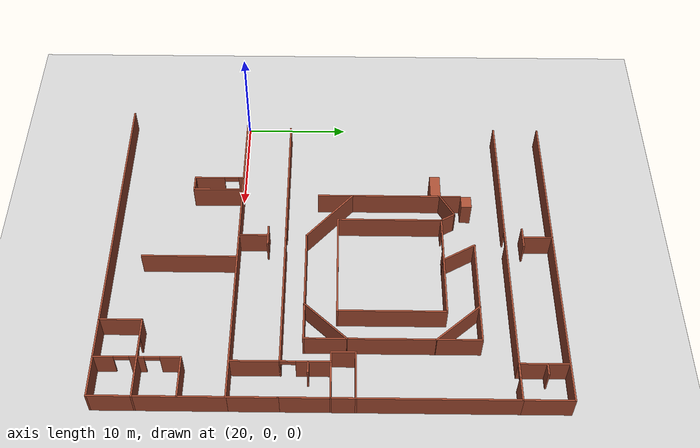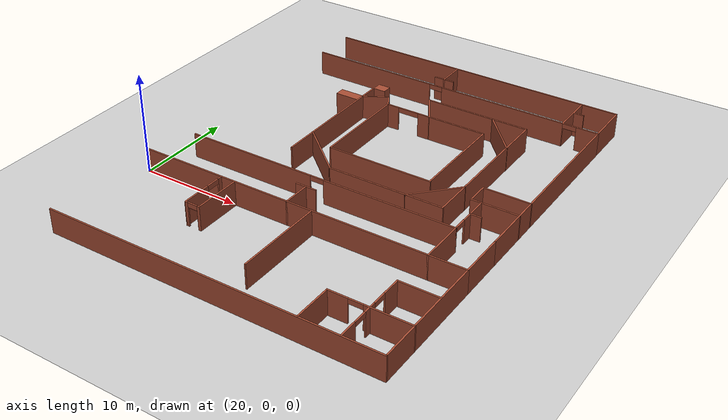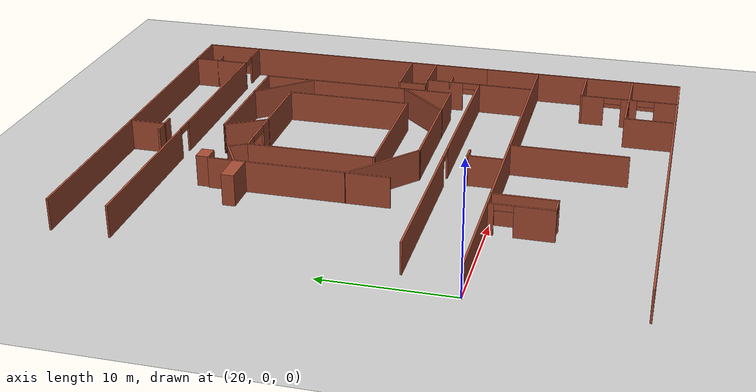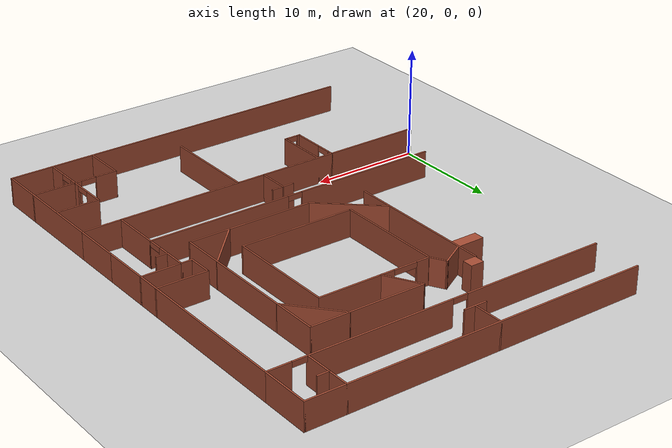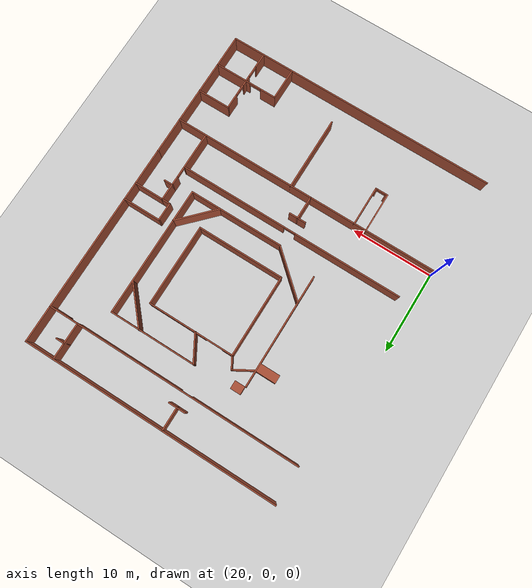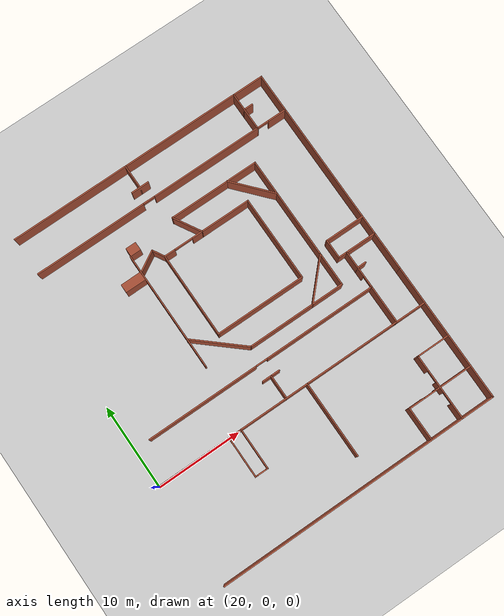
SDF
<sdf version="1.7">
 <world name="default">
  <model name="ground_plane">
   <pose>10 0 0 0 -0 0</pose>
   <static>1</static>
   <link name="link">
    <collision name="collision">
     <geometry><plane><normal>0 0 1</normal><size>100 100</size></plane></geometry>
     <surface><friction><ode><mu>100</mu><mu2>50</mu2></ode></friction></surface>
    </collision>
    <visual name="visual">
     <cast_shadows>0</cast_shadows>
     <geometry><plane><normal>0 0 1</normal><size>100 100</size></plane></geometry>
     <material>
      <script><uri>file://media/materials/scripts/gazebo.material</uri><name>Gazebo/Grey</name></script>
     </material>
    </visual>
   </link>
  </model>
  <model name="indoor_total_5">
   <pose>26.8 9 0 0 -0 0</pose>
   <link name="Wall_101">
    <collision name="Wall_101_Collision">
     <geometry><box><size>2.95 0.15 2.5</size></box></geometry>
     <pose>0 0 1.25 0 -0 0</pose>
    </collision>
    <visual name="Wall_101_Visual">
     <pose>0 0 1.25 0 -0 0</pose>
     <geometry><box><size>2.95 0.15 2.5</size></box></geometry>
     <material>
      <script><uri>file://media/materials/scripts/gazebo.material</uri><name>Gazebo/Bricks</name></script>
      <ambient>1 1 1 1</ambient>
     </material>
     <meta><layer>0</layer></meta>
    </visual>
    <pose>9.2 -7.6 0 0 -0 1.5708</pose>
   </link>
   <link name="Wall_103">
    <collision name="Wall_103_Collision">
     <geometry><box><size>4.65 0.15 2.5</size></box></geometry>
     <pose>0 0 1.25 0 -0 0</pose>
    </collision>
    <visual name="Wall_103_Visual">
     <pose>0 0 1.25 0 -0 0</pose>
     <geometry><box><size>4.65 0.15 2.5</size></box></geometry>
     <material>
      <script><uri>file://media/materials/scripts/gazebo.material</uri><name>Gazebo/Bricks</name></script>
      <ambient>1 1 1 1</ambient>
     </material>
     <meta><layer>0</layer></meta>
    </visual>
    <pose>23.2 -6.75 0 0 -0 -1.5708</pose>
   </link>
   <link name="Wall_107">
    <collision name="Wall_107_Collision">
     <geometry><box><size>16.15 0.15 2.5</size></box></geometry>
     <pose>0 0 1.25 0 -0 0</pose>
    </collision>
    <visual name="Wall_107_Visual">
     <pose>0 0 1.25 0 -0 0</pose>
     <geometry><box><size>16.15 0.15 2.5</size></box></geometry>
     <material>
      <script><uri>file://media/materials/scripts/gazebo.material</uri><name>Gazebo/Bricks</name></script>
      <ambient>1 1 1 1</ambient>
     </material>
     <meta><layer>0</layer></meta>
    </visual>
    <pose>20.8 5.5 0 0 -0 -1.5708</pose>
   </link>
   <link name="Wall_108">
    <collision name="Wall_108_Collision">
     <geometry><box><size>11.75 0.15 2.5</size></box></geometry>
     <pose>0 0 1.25 0 -0 0</pose>
    </collision>
    <visual name="Wall_108_Visual">
     <pose>0 0 1.25 0 -0 0</pose>
     <geometry><box><size>11.75 0.15 2.5</size></box></geometry>
     <material>
      <script><uri>file://media/materials/scripts/gazebo.material</uri><name>Gazebo/Bricks</name></script>
      <ambient>1 1 1 1</ambient>
     </material>
     <meta><layer>0</layer></meta>
    </visual>
    <pose>15 -2.5 0 0 -0 3.14159</pose>
   </link>
   <link name="Wall_110">
    <collision name="Wall_110_Collision">
     <geometry><box><size>6.81033 0.15 2.5</size></box></geometry>
     <pose>0 0 1.25 0 -0 0</pose>
    </collision>
    <visual name="Wall_110_Visual">
     <pose>0 0 1.25 0 -0 0</pose>
     <geometry><box><size>6.81033 0.15 2.5</size></box></geometry>
     <material>
      <script><uri>file://media/materials/scripts/gazebo.material</uri><name>Gazebo/Bricks</name></script>
      <ambient>1 1 1 1</ambient>
     </material>
     <meta><layer>0</layer></meta>
    </visual>
    <pose>6.7 -0.3 0 0 -0 -0.721655</pose>
   </link>
   <link name="Wall_112">
    <collision name="Wall_112_Collision">
     <geometry><box><size>2.42454 1 2.5</size></box></geometry>
     <pose>0 0 1.25 0 -0 0</pose>
    </collision>
    <visual name="Wall_112_Visual">
     <pose>0 0 1.25 0 -0 0</pose>
     <geometry><box><size>2.42454 1 2.5</size></box></geometry>
     <material>
      <script><uri>file://media/materials/scripts/gazebo.material</uri><name>Gazebo/Bricks</name></script>
      <ambient>1 1 1 1</ambient>
     </material>
     <meta><layer>0</layer></meta>
    </visual>
    <pose>2.9125 10.087 0 0 -0 0</pose>
   </link>
   <link name="Wall_120">
    <collision name="Wall_120_Collision">
     <geometry><box><size>2.74856 0.15 2.5</size></box></geometry>
     <pose>0 0 1.25 0 -0 0</pose>
    </collision>
    <visual name="Wall_120_Visual">
     <pose>0 0 1.25 0 -0 0</pose>
     <geometry><box><size>2.74856 0.15 2.5</size></box></geometry>
     <material>
      <script><uri>file://media/materials/scripts/gazebo.material</uri><name>Gazebo/Bricks</name></script>
      <ambient>1 1 1 1</ambient>
     </material>
     <meta><layer>0</layer></meta>
    </visual>
    <pose>5.325 11.15 0 0 -0 0.523919</pose>
   </link>
   <link name="Wall_121">
    <collision name="Wall_121_Collision">
     <geometry><box><size>1.65083 0.15 2.5</size></box></geometry>
     <pose>0 0 1.25 0 -0 0</pose>
    </collision>
    <visual name="Wall_121_Visual">
     <pose>0 0 1.25 0 -0 0</pose>
     <geometry><box><size>1.65083 0.15 2.5</size></box></geometry>
     <material>
      <script><uri>file://media/materials/scripts/gazebo.material</uri><name>Gazebo/Bricks</name></script>
      <ambient>1 1 1 1</ambient>
     </material>
     <meta><layer>0</layer></meta>
    </visual>
    <pose>6.825 11.15 0 0 -0 -1.04752</pose>
   </link>
   <link name="Wall_128">
    <collision name="Wall_128_Collision">
     <geometry><box><size>3.61308 0.15 2.5</size></box></geometry>
     <pose>0 0 1.25 0 -0 0</pose>
    </collision>
    <visual name="Wall_128_Visual">
     <pose>0 0 1.25 0 -0 0</pose>
     <geometry><box><size>3.61308 0.15 2.5</size></box></geometry>
     <material>
      <script><uri>file://media/materials/scripts/gazebo.material</uri><name>Gazebo/Bricks</name></script>
      <ambient>1 1 1 1</ambient>
     </material>
     <meta><layer>0</layer></meta>
    </visual>
    <pose>11.065 12 0 0 -0 -1.04771</pose>
   </link>
   <link name="Wall_130">
    <collision name="Wall_130_Collision">
     <geometry><box><size>5.53693 0.15 2.5</size></box></geometry>
     <pose>0 0 1.25 0 -0 0</pose>
    </collision>
    <visual name="Wall_130_Visual">
     <pose>0 0 1.25 0 -0 0</pose>
     <geometry><box><size>5.53693 0.15 2.5</size></box></geometry>
     <material>
      <script><uri>file://media/materials/scripts/gazebo.material</uri><name>Gazebo/Bricks</name></script>
      <ambient>1 1 1 1</ambient>
     </material>
     <meta><layer>0</layer></meta>
    </visual>
    <pose>18.9425 -0.5495 0 0 -0 0.809816</pose>
   </link>
   <link name="Wall_132">
    <collision name="Wall_132_Collision">
     <geometry><box><size>5.58972 0.15 2.5</size></box></geometry>
     <pose>0 0 1.25 0 -0 0</pose>
    </collision>
    <visual name="Wall_132_Visual">
     <pose>0 0 1.25 0 -0 0</pose>
     <geometry><box><size>5.58972 0.15 2.5</size></box></geometry>
     <material>
      <script><uri>file://media/materials/scripts/gazebo.material</uri><name>Gazebo/Bricks</name></script>
      <ambient>1 1 1 1</ambient>
     </material>
     <meta><layer>0</layer></meta>
    </visual>
    <pose>19.0085 11.4535 0 0 -0 -0.851742</pose>
   </link>
   <link name="Wall_142">
    <pose>12.5 10.5 0 0 -0 0</pose>
    <visual name="Wall_142_Visual_0">
     <pose>-4.705 0 1.25 0 -0 0</pose>
     <geometry><box><size>1.34 0.15 2.5</size></box></geometry>
     <material>
      <script><uri>file://media/materials/scripts/gazebo.material</uri><name>Gazebo/Bricks</name></script>
      <ambient>1 1 1 1</ambient>
     </material>
     <meta><layer>0</layer></meta>
    </visual>
    <collision name="Wall_142_Collision_0">
     <geometry><box><size>1.34 0.15 2.5</size></box></geometry>
     <pose>-4.705 0 1.25 0 -0 0</pose>
    </collision>
    <visual name="Wall_142_Visual_1">
     <pose>1.77 0 1.25 0 -0 0</pose>
     <geometry><box><size>7.21 0.15 2.5</size></box></geometry>
     <material>
      <script><uri>file://media/materials/scripts/gazebo.material</uri><name>Gazebo/Bricks</name></script>
      <ambient>1 1 1 1</ambient>
     </material>
     <meta><layer>0</layer></meta>
    </visual>
    <collision name="Wall_142_Collision_1">
     <geometry><box><size>7.21 0.15 2.5</size></box></geometry>
     <pose>1.77 0 1.25 0 -0 0</pose>
    </collision>
    <visual name="Wall_142_Visual_2">
     <pose>-2.935 0 2.25 0 -0 0</pose>
     <geometry><box><size>2.2 0.15 0.5</size></box></geometry>
     <material>
      <script><uri>file://media/materials/scripts/gazebo.material</uri><name>Gazebo/Bricks</name></script>
      <ambient>1 1 1 1</ambient>
     </material>
     <meta><layer>0</layer></meta>
    </visual>
    <collision name="Wall_142_Collision_2">
     <geometry><box><size>2.2 0.15 0.5</size></box></geometry>
     <pose>-2.935 0 2.25 0 -0 0</pose>
    </collision>
   </link>
   <link name="Wall_143">
    <collision name="Wall_143_Collision">
     <geometry><box><size>10.15 0.15 2.5</size></box></geometry>
     <pose>0 0 1.25 0 -0 0</pose>
    </collision>
    <visual name="Wall_143_Visual">
     <pose>0 0 1.25 0 -0 0</pose>
     <geometry><box><size>10.15 0.15 2.5</size></box></geometry>
     <material>
      <script><uri>file://media/materials/scripts/gazebo.material</uri><name>Gazebo/Bricks</name></script>
      <ambient>1 1 1 1</ambient>
     </material>
     <meta><layer>0</layer></meta>
    </visual>
    <pose>17.8 5.5 0 0 -0 -1.5708</pose>
   </link>
   <link name="Wall_144">
    <collision name="Wall_144_Collision">
     <geometry><box><size>10.75 0.15 2.5</size></box></geometry>
     <pose>0 0 1.25 0 -0 0</pose>
    </collision>
    <visual name="Wall_144_Visual">
     <pose>0 0 1.25 0 -0 0</pose>
     <geometry><box><size>10.75 0.15 2.5</size></box></geometry>
     <material>
      <script><uri>file://media/materials/scripts/gazebo.material</uri><name>Gazebo/Bricks</name></script>
      <ambient>1 1 1 1</ambient>
     </material>
     <meta><layer>0</layer></meta>
    </visual>
    <pose>12.5 0.5 0 0 -0 3.14159</pose>
   </link>
   <link name="Wall_145">
    <collision name="Wall_145_Collision">
     <geometry><box><size>10.15 0.15 2.5</size></box></geometry>
     <pose>0 0 1.25 0 -0 0</pose>
    </collision>
    <visual name="Wall_145_Visual">
     <pose>0 0 1.25 0 -0 0</pose>
     <geometry><box><size>10.15 0.15 2.5</size></box></geometry>
     <material>
      <script><uri>file://media/materials/scripts/gazebo.material</uri><name>Gazebo/Bricks</name></script>
      <ambient>1 1 1 1</ambient>
     </material>
     <meta><layer>0</layer></meta>
    </visual>
    <pose>7.2 5.5 0 0 -0 1.5708</pose>
   </link>
   <link name="Wall_147">
    <collision name="Wall_147_Collision">
     <geometry><box><size>2.15 0.15 2.5</size></box></geometry>
     <pose>0 0 1.25 0 -0 0</pose>
    </collision>
    <visual name="Wall_147_Visual">
     <pose>0 0 1.25 0 -0 0</pose>
     <geometry><box><size>2.15 0.15 2.5</size></box></geometry>
     <material>
      <script><uri>file://media/materials/scripts/gazebo.material</uri><name>Gazebo/Bricks</name></script>
      <ambient>1 1 1 1</ambient>
     </material>
     <meta><layer>0</layer></meta>
    </visual>
    <pose>9.2 18.2 0 0 -0 0</pose>
   </link>
   <link name="Wall_149">
    <collision name="Wall_149_Collision">
     <geometry><box><size>1.15 0.15 2.5</size></box></geometry>
     <pose>0 0 1.25 0 -0 0</pose>
    </collision>
    <visual name="Wall_149_Visual">
     <pose>0 0 1.25 0 -0 0</pose>
     <geometry><box><size>1.15 0.15 2.5</size></box></geometry>
     <material>
      <script><uri>file://media/materials/scripts/gazebo.material</uri><name>Gazebo/Bricks</name></script>
      <ambient>1 1 1 1</ambient>
     </material>
     <meta><layer>0</layer></meta>
    </visual>
    <pose>23.7 19 0 0 -0 0</pose>
   </link>
   <link name="Wall_151">
    <collision name="Wall_151_Collision">
     <geometry><box><size>1.15 0.15 2.5</size></box></geometry>
     <pose>0 0 1.25 0 -0 0</pose>
    </collision>
    <visual name="Wall_151_Visual">
     <pose>0 0 1.25 0 -0 0</pose>
     <geometry><box><size>1.15 0.15 2.5</size></box></geometry>
     <material>
      <script><uri>file://media/materials/scripts/gazebo.material</uri><name>Gazebo/Bricks</name></script>
      <ambient>1 1 1 1</ambient>
     </material>
     <meta><layer>0</layer></meta>
    </visual>
    <pose>23.7 -2 0 0 -0 0</pose>
   </link>
   <link name="Wall_158">
    <pose>2 -11.4 0 0 -0 -1.5708</pose>
    <visual name="Wall_158_Visual_0">
     <pose>-2.19297 0 1.25 0 -0 0</pose>
     <geometry><box><size>0.564066 0.15 2.5</size></box></geometry>
     <material>
      <script><uri>file://media/materials/scripts/gazebo.material</uri><name>Gazebo/Bricks</name></script>
      <ambient>1 1 1 1</ambient>
     </material>
     <meta><layer>0</layer></meta>
    </visual>
    <collision name="Wall_158_Collision_0">
     <geometry><box><size>0.564066 0.15 2.5</size></box></geometry>
     <pose>-2.19297 0 1.25 0 -0 0</pose>
    </collision>
    <visual name="Wall_158_Visual_1">
     <pose>0.982033 0 1.25 0 -0 0</pose>
     <geometry><box><size>2.98593 0.15 2.5</size></box></geometry>
     <material>
      <script><uri>file://media/materials/scripts/gazebo.material</uri><name>Gazebo/Bricks</name></script>
      <ambient>1 1 1 1</ambient>
     </material>
     <meta><layer>0</layer></meta>
    </visual>
    <collision name="Wall_158_Collision_1">
     <geometry><box><size>2.98593 0.15 2.5</size></box></geometry>
     <pose>0.982033 0 1.25 0 -0 0</pose>
    </collision>
    <visual name="Wall_158_Visual_2">
     <pose>-1.21093 0 2.25 0 -0 0</pose>
     <geometry><box><size>1.4 0.15 0.5</size></box></geometry>
     <material>
      <script><uri>file://media/materials/scripts/gazebo.material</uri><name>Gazebo/Bricks</name></script>
      <ambient>1 1 1 1</ambient>
     </material>
     <meta><layer>0</layer></meta>
    </visual>
    <collision name="Wall_158_Collision_2">
     <geometry><box><size>1.4 0.15 0.5</size></box></geometry>
     <pose>-1.21093 0 2.25 0 -0 0</pose>
    </collision>
   </link>
   <link name="Wall_159">
    <pose>2.75 -13.8 0 0 -0 0</pose>
    <visual name="Wall_159_Visual_0">
     <pose>-0.651036 0 1.25 0 -0 0</pose>
     <geometry><box><size>0.347928 0.15 2.5</size></box></geometry>
     <material>
      <script><uri>file://media/materials/scripts/gazebo.material</uri><name>Gazebo/Bricks</name></script>
      <ambient>1 1 1 1</ambient>
     </material>
     <meta><layer>0</layer></meta>
    </visual>
    <collision name="Wall_159_Collision_0">
     <geometry><box><size>0.347928 0.15 2.5</size></box></geometry>
     <pose>-0.651036 0 1.25 0 -0 0</pose>
    </collision>
    <visual name="Wall_159_Visual_1">
     <pose>0.673964 0 1.25 0 -0 0</pose>
     <geometry><box><size>0.302072 0.15 2.5</size></box></geometry>
     <material>
      <script><uri>file://media/materials/scripts/gazebo.material</uri><name>Gazebo/Bricks</name></script>
      <ambient>1 1 1 1</ambient>
     </material>
     <meta><layer>0</layer></meta>
    </visual>
    <collision name="Wall_159_Collision_1">
     <geometry><box><size>0.302072 0.15 2.5</size></box></geometry>
     <pose>0.673964 0 1.25 0 -0 0</pose>
    </collision>
    <visual name="Wall_159_Visual_2">
     <pose>0.022928 0 2.25 0 -0 0</pose>
     <geometry><box><size>1 0.15 0.5</size></box></geometry>
     <material>
      <script><uri>file://media/materials/scripts/gazebo.material</uri><name>Gazebo/Bricks</name></script>
      <ambient>1 1 1 1</ambient>
     </material>
     <meta><layer>0</layer></meta>
    </visual>
    <collision name="Wall_159_Collision_2">
     <geometry><box><size>1 0.15 0.5</size></box></geometry>
     <pose>0.022928 0 2.25 0 -0 0</pose>
    </collision>
   </link>
   <link name="Wall_160">
    <collision name="Wall_160_Collision">
     <geometry><box><size>4.95 0.15 2.5</size></box></geometry>
     <pose>0 0 1.25 0 -0 0</pose>
    </collision>
    <visual name="Wall_160_Visual">
     <pose>0 0 1.25 0 -0 0</pose>
     <geometry><box><size>4.95 0.15 2.5</size></box></geometry>
     <material>
      <script><uri>file://media/materials/scripts/gazebo.material</uri><name>Gazebo/Bricks</name></script>
      <ambient>1 1 1 1</ambient>
     </material>
     <meta><layer>0</layer></meta>
    </visual>
    <pose>3.5 -11.4 0 0 -0 1.5708</pose>
   </link>
   <link name="Wall_162">
    <collision name="Wall_162_Collision">
     <geometry><box><size>4.05 0.15 2.5</size></box></geometry>
     <pose>0 0 1.25 0 -0 0</pose>
    </collision>
    <visual name="Wall_162_Visual">
     <pose>0 0 1.25 0 -0 0</pose>
     <geometry><box><size>4.05 0.15 2.5</size></box></geometry>
     <material>
      <script><uri>file://media/materials/scripts/gazebo.material</uri><name>Gazebo/Bricks</name></script>
      <ambient>1 1 1 1</ambient>
     </material>
     <meta><layer>0</layer></meta>
    </visual>
    <pose>19 -19.05 0 0 -0 1.5708</pose>
   </link>
   <link name="Wall_163">
    <pose>22.9 -17.1 0 0 -0 0</pose>
    <visual name="Wall_163_Visual_0">
     <pose>-2.97254 0 1.25 0 -0 0</pose>
     <geometry><box><size>2.00492 0.15 2.5</size></box></geometry>
     <material>
      <script><uri>file://media/materials/scripts/gazebo.material</uri><name>Gazebo/Bricks</name></script>
      <ambient>1 1 1 1</ambient>
     </material>
     <meta><layer>0</layer></meta>
    </visual>
    <collision name="Wall_163_Collision_0">
     <geometry><box><size>2.00492 0.15 2.5</size></box></geometry>
     <pose>-2.97254 0 1.25 0 -0 0</pose>
    </collision>
    <visual name="Wall_163_Visual_1">
     <pose>1.70246 0 1.25 0 -0 0</pose>
     <geometry><box><size>4.54508 0.15 2.5</size></box></geometry>
     <material>
      <script><uri>file://media/materials/scripts/gazebo.material</uri><name>Gazebo/Bricks</name></script>
      <ambient>1 1 1 1</ambient>
     </material>
     <meta><layer>0</layer></meta>
    </visual>
    <collision name="Wall_163_Collision_1">
     <geometry><box><size>4.54508 0.15 2.5</size></box></geometry>
     <pose>1.70246 0 1.25 0 -0 0</pose>
    </collision>
    <visual name="Wall_163_Visual_2">
     <pose>-1.27008 0 2.25 0 -0 0</pose>
     <geometry><box><size>1.4 0.15 0.5</size></box></geometry>
     <material>
      <script><uri>file://media/materials/scripts/gazebo.material</uri><name>Gazebo/Bricks</name></script>
      <ambient>1 1 1 1</ambient>
     </material>
     <meta><layer>0</layer></meta>
    </visual>
    <collision name="Wall_163_Collision_2">
     <geometry><box><size>1.4 0.15 0.5</size></box></geometry>
     <pose>-1.27008 0 2.25 0 -0 0</pose>
    </collision>
   </link>
   <link name="Wall_165">
    <collision name="Wall_165_Collision">
     <geometry><box><size>4.05 0.15 2.5</size></box></geometry>
     <pose>0 0 1.25 0 -0 0</pose>
    </collision>
    <visual name="Wall_165_Visual">
     <pose>0 0 1.25 0 -0 0</pose>
     <geometry><box><size>4.05 0.15 2.5</size></box></geometry>
     <material>
      <script><uri>file://media/materials/scripts/gazebo.material</uri><name>Gazebo/Bricks</name></script>
      <ambient>1 1 1 1</ambient>
     </material>
     <meta><layer>0</layer></meta>
    </visual>
    <pose>24.85 -13.2 0 0 -0 3.14159</pose>
   </link>
   <link name="Wall_166">
    <pose>22.9 -17.1 0 0 -0 -1.5708</pose>
    <visual name="Wall_166_Visual_0">
     <pose>-3.00683 0 1.25 0 -0 0</pose>
     <geometry><box><size>1.93633 0.15 2.5</size></box></geometry>
     <material>
      <script><uri>file://media/materials/scripts/gazebo.material</uri><name>Gazebo/Bricks</name></script>
      <ambient>1 1 1 1</ambient>
     </material>
     <meta><layer>0</layer></meta>
    </visual>
    <collision name="Wall_166_Collision_0">
     <geometry><box><size>1.93633 0.15 2.5</size></box></geometry>
     <pose>-3.00683 0 1.25 0 -0 0</pose>
    </collision>
    <visual name="Wall_166_Visual_1">
     <pose>0.014946 0 1.25 0 -0 0</pose>
     <geometry><box><size>1.30723 0.15 2.5</size></box></geometry>
     <material>
      <script><uri>file://media/materials/scripts/gazebo.material</uri><name>Gazebo/Bricks</name></script>
      <ambient>1 1 1 1</ambient>
     </material>
     <meta><layer>0</layer></meta>
    </visual>
    <collision name="Wall_166_Collision_1">
     <geometry><box><size>1.30723 0.15 2.5</size></box></geometry>
     <pose>0.014946 0 1.25 0 -0 0</pose>
    </collision>
    <visual name="Wall_166_Visual_2">
     <pose>3.02178 0 1.25 0 -0 0</pose>
     <geometry><box><size>1.90644 0.15 2.5</size></box></geometry>
     <material>
      <script><uri>file://media/materials/scripts/gazebo.material</uri><name>Gazebo/Bricks</name></script>
      <ambient>1 1 1 1</ambient>
     </material>
     <meta><layer>0</layer></meta>
    </visual>
    <collision name="Wall_166_Collision_2">
     <geometry><box><size>1.90644 0.15 2.5</size></box></geometry>
     <pose>3.02178 0 1.25 0 -0 0</pose>
    </collision>
    <visual name="Wall_166_Visual_3">
     <pose>-1.33867 0 2.25 0 -0 0</pose>
     <geometry><box><size>1.4 0.15 0.5</size></box></geometry>
     <material>
      <script><uri>file://media/materials/scripts/gazebo.material</uri><name>Gazebo/Bricks</name></script>
      <ambient>1 1 1 1</ambient>
     </material>
     <meta><layer>0</layer></meta>
    </visual>
    <collision name="Wall_166_Collision_3">
     <geometry><box><size>1.4 0.15 0.5</size></box></geometry>
     <pose>-1.33867 0 2.25 0 -0 0</pose>
    </collision>
    <visual name="Wall_166_Visual_4">
     <pose>1.36856 0 2.25 0 -0 0</pose>
     <geometry><box><size>1.4 0.15 0.5</size></box></geometry>
     <material>
      <script><uri>file://media/materials/scripts/gazebo.material</uri><name>Gazebo/Bricks</name></script>
      <ambient>1 1 1 1</ambient>
     </material>
     <meta><layer>0</layer></meta>
    </visual>
    <collision name="Wall_166_Collision_4">
     <geometry><box><size>1.4 0.15 0.5</size></box></geometry>
     <pose>1.36856 0 2.25 0 -0 0</pose>
    </collision>
   </link>
   <link name="Wall_168">
    <collision name="Wall_168_Collision">
     <geometry><box><size>2.15 0.15 2.5</size></box></geometry>
     <pose>0 0 1.25 0 -0 0</pose>
    </collision>
    <visual name="Wall_168_Visual">
     <pose>0 0 1.25 0 -0 0</pose>
     <geometry><box><size>2.15 0.15 2.5</size></box></geometry>
     <material>
      <script><uri>file://media/materials/scripts/gazebo.material</uri><name>Gazebo/Bricks</name></script>
      <ambient>1 1 1 1</ambient>
     </material>
     <meta><layer>0</layer></meta>
    </visual>
    <pose>9.2 -6.2 0 0 -0 0</pose>
   </link>
   <link name="Wall_174">
    <collision name="Wall_174_Collision">
     <geometry><box><size>1.25 1 2.5</size></box></geometry>
     <pose>0 0 1.25 0 -0 0</pose>
    </collision>
    <visual name="Wall_174_Visual">
     <pose>0 0 1.25 0 -0 0</pose>
     <geometry><box><size>1.25 1 2.5</size></box></geometry>
     <material>
      <script><uri>file://media/materials/scripts/gazebo.material</uri><name>Gazebo/Bricks</name></script>
      <ambient>1 1 1 1</ambient>
     </material>
     <meta><layer>0</layer></meta>
    </visual>
    <pose>4.88086 13.0421 0 0 -0 0</pose>
   </link>
   <link name="Wall_176">
    <collision name="Wall_176_Collision">
     <geometry><box><size>4.65 0.15 2.5</size></box></geometry>
     <pose>0 0 1.25 0 -0 0</pose>
    </collision>
    <visual name="Wall_176_Visual">
     <pose>0 0 1.25 0 -0 0</pose>
     <geometry><box><size>4.65 0.15 2.5</size></box></geometry>
     <material>
      <script><uri>file://media/materials/scripts/gazebo.material</uri><name>Gazebo/Bricks</name></script>
      <ambient>1 1 1 1</ambient>
     </material>
     <meta><layer>0</layer></meta>
    </visual>
    <pose>26.8 -6.75 0 0 -0 -1.5708</pose>
   </link>
   <link name="Wall_56">
    <collision name="Wall_56_Collision">
     <geometry><box><size>31.75 0.15 2.5</size></box></geometry>
     <pose>0 0 1.25 0 -0 0</pose>
    </collision>
    <visual name="Wall_56_Visual">
     <pose>0 0 1.25 0 -0 0</pose>
     <geometry><box><size>31.75 0.15 2.5</size></box></geometry>
     <material>
      <script><uri>file://media/materials/scripts/gazebo.material</uri><name>Gazebo/Bricks</name></script>
      <ambient>1 1 1 1</ambient>
     </material>
     <meta><layer>0</layer></meta>
    </visual>
    <pose>11 21 0 0 -0 0</pose>
   </link>
   <link name="Wall_57">
    <collision name="Wall_57_Collision">
     <geometry><box><size>4.65 0.15 2.5</size></box></geometry>
     <pose>0 0 1.25 0 -0 0</pose>
    </collision>
    <visual name="Wall_57_Visual">
     <pose>0 0 1.25 0 -0 0</pose>
     <geometry><box><size>4.65 0.15 2.5</size></box></geometry>
     <material>
      <script><uri>file://media/materials/scripts/gazebo.material</uri><name>Gazebo/Bricks</name></script>
      <ambient>1 1 1 1</ambient>
     </material>
     <meta><layer>0</layer></meta>
    </visual>
    <pose>26.8 18.75 0 0 -0 -1.5708</pose>
   </link>
   <link name="Wall_58">
    <pose>11 16.5 0 0 -0 3.14159</pose>
    <visual name="Wall_58_Visual_0">
     <pose>-14.7375 0 1.25 0 -0 0</pose>
     <geometry><box><size>2.275 0.15 2.5</size></box></geometry>
     <material>
      <script><uri>file://media/materials/scripts/gazebo.material</uri><name>Gazebo/Bricks</name></script>
      <ambient>1 1 1 1</ambient>
     </material>
     <meta><layer>0</layer></meta>
    </visual>
    <collision name="Wall_58_Collision_0">
     <geometry><box><size>2.275 0.15 2.5</size></box></geometry>
     <pose>-14.7375 0 1.25 0 -0 0</pose>
    </collision>
    <visual name="Wall_58_Visual_1">
     <pose>-5.55 0 1.25 0 -0 0</pose>
     <geometry><box><size>13.3 0.15 2.5</size></box></geometry>
     <material>
      <script><uri>file://media/materials/scripts/gazebo.material</uri><name>Gazebo/Bricks</name></script>
      <ambient>1 1 1 1</ambient>
     </material>
     <meta><layer>0</layer></meta>
    </visual>
    <collision name="Wall_58_Collision_1">
     <geometry><box><size>13.3 0.15 2.5</size></box></geometry>
     <pose>-5.55 0 1.25 0 -0 0</pose>
    </collision>
    <visual name="Wall_58_Visual_2">
     <pose>9.1875 0 1.25 0 -0 0</pose>
     <geometry><box><size>13.375 0.15 2.5</size></box></geometry>
     <material>
      <script><uri>file://media/materials/scripts/gazebo.material</uri><name>Gazebo/Bricks</name></script>
      <ambient>1 1 1 1</ambient>
     </material>
     <meta><layer>0</layer></meta>
    </visual>
    <collision name="Wall_58_Collision_2">
     <geometry><box><size>13.375 0.15 2.5</size></box></geometry>
     <pose>9.1875 0 1.25 0 -0 0</pose>
    </collision>
    <visual name="Wall_58_Visual_3">
     <pose>-12.9 0 2.25 0 -0 0</pose>
     <geometry><box><size>1.4 0.15 0.5</size></box></geometry>
     <material>
      <script><uri>file://media/materials/scripts/gazebo.material</uri><name>Gazebo/Bricks</name></script>
      <ambient>1 1 1 1</ambient>
     </material>
     <meta><layer>0</layer></meta>
    </visual>
    <collision name="Wall_58_Collision_3">
     <geometry><box><size>1.4 0.15 0.5</size></box></geometry>
     <pose>-12.9 0 2.25 0 -0 0</pose>
    </collision>
    <visual name="Wall_58_Visual_4">
     <pose>1.8 0 2.25 0 -0 0</pose>
     <geometry><box><size>1.4 0.15 0.5</size></box></geometry>
     <material>
      <script><uri>file://media/materials/scripts/gazebo.material</uri><name>Gazebo/Bricks</name></script>
      <ambient>1 1 1 1</ambient>
     </material>
     <meta><layer>0</layer></meta>
    </visual>
    <collision name="Wall_58_Collision_4">
     <geometry><box><size>1.4 0.15 0.5</size></box></geometry>
     <pose>1.8 0 2.25 0 -0 0</pose>
    </collision>
   </link>
   <link name="Wall_61">
    <collision name="Wall_61_Collision">
     <geometry><box><size>2.95 0.15 2.5</size></box></geometry>
     <pose>0 0 1.25 0 -0 0</pose>
    </collision>
    <visual name="Wall_61_Visual">
     <pose>0 0 1.25 0 -0 0</pose>
     <geometry><box><size>2.95 0.15 2.5</size></box></geometry>
     <material>
      <script><uri>file://media/materials/scripts/gazebo.material</uri><name>Gazebo/Bricks</name></script>
      <ambient>1 1 1 1</ambient>
     </material>
     <meta><layer>0</layer></meta>
    </visual>
    <pose>9.2 19.6 0 0 -0 -1.5708</pose>
   </link>
   <link name="Wall_63">
    <collision name="Wall_63_Collision">
     <geometry><box><size>4.65 0.15 2.5</size></box></geometry>
     <pose>0 0 1.25 0 -0 0</pose>
    </collision>
    <visual name="Wall_63_Visual">
     <pose>0 0 1.25 0 -0 0</pose>
     <geometry><box><size>4.65 0.15 2.5</size></box></geometry>
     <material>
      <script><uri>file://media/materials/scripts/gazebo.material</uri><name>Gazebo/Bricks</name></script>
      <ambient>1 1 1 1</ambient>
     </material>
     <meta><layer>0</layer></meta>
    </visual>
    <pose>23.2 18.75 0 0 -0 -1.5708</pose>
   </link>
   <link name="Wall_65">
    <collision name="Wall_65_Collision">
     <geometry><box><size>12.15 0.15 2.5</size></box></geometry>
     <pose>0 0 1.25 0 -0 0</pose>
    </collision>
    <visual name="Wall_65_Visual">
     <pose>0 0 1.25 0 -0 0</pose>
     <geometry><box><size>12.15 0.15 2.5</size></box></geometry>
     <material>
      <script><uri>file://media/materials/scripts/gazebo.material</uri><name>Gazebo/Bricks</name></script>
      <ambient>1 1 1 1</ambient>
     </material>
     <meta><layer>0</layer></meta>
    </visual>
    <pose>26.8 -15 0 0 -0 -1.5708</pose>
   </link>
   <link name="Wall_66">
    <collision name="Wall_66_Collision">
     <geometry><box><size>33.75 0.15 2.5</size></box></geometry>
     <pose>0 0 1.25 0 -0 0</pose>
    </collision>
    <visual name="Wall_66_Visual">
     <pose>0 0 1.25 0 -0 0</pose>
     <geometry><box><size>33.75 0.15 2.5</size></box></geometry>
     <material>
      <script><uri>file://media/materials/scripts/gazebo.material</uri><name>Gazebo/Bricks</name></script>
      <ambient>1 1 1 1</ambient>
     </material>
     <meta><layer>0</layer></meta>
    </visual>
    <pose>10 -21 0 0 -0 3.14159</pose>
   </link>
   <link name="Wall_68">
    <collision name="Wall_68_Collision">
     <geometry><box><size>33.75 0.15 2.5</size></box></geometry>
     <pose>0 0 1.25 0 -0 0</pose>
    </collision>
    <visual name="Wall_68_Visual">
     <pose>0 0 1.25 0 -0 0</pose>
     <geometry><box><size>33.75 0.15 2.5</size></box></geometry>
     <material>
      <script><uri>file://media/materials/scripts/gazebo.material</uri><name>Gazebo/Bricks</name></script>
      <ambient>1 1 1 1</ambient>
     </material>
     <meta><layer>0</layer></meta>
    </visual>
    <pose>10 -9 0 0 -0 0</pose>
   </link>
   <link name="Wall_76">
    <pose>9.2 -4.5 0 0 -0 0</pose>
    <visual name="Wall_76_Visual_0">
     <pose>-7.3875 0 1.25 0 -0 0</pose>
     <geometry><box><size>13.375 0.15 2.5</size></box></geometry>
     <material>
      <script><uri>file://media/materials/scripts/gazebo.material</uri><name>Gazebo/Bricks</name></script>
      <ambient>1 1 1 1</ambient>
     </material>
     <meta><layer>0</layer></meta>
    </visual>
    <collision name="Wall_76_Collision_0">
     <geometry><box><size>13.375 0.15 2.5</size></box></geometry>
     <pose>-7.3875 0 1.25 0 -0 0</pose>
    </collision>
    <visual name="Wall_76_Visual_1">
     <pose>7.3875 0 1.25 0 -0 0</pose>
     <geometry><box><size>13.375 0.15 2.5</size></box></geometry>
     <material>
      <script><uri>file://media/materials/scripts/gazebo.material</uri><name>Gazebo/Bricks</name></script>
      <ambient>1 1 1 1</ambient>
     </material>
     <meta><layer>0</layer></meta>
    </visual>
    <collision name="Wall_76_Collision_1">
     <geometry><box><size>13.375 0.15 2.5</size></box></geometry>
     <pose>7.3875 0 1.25 0 -0 0</pose>
    </collision>
    <visual name="Wall_76_Visual_2">
     <pose>0 0 2.25 0 -0 0</pose>
     <geometry><box><size>1.4 0.15 0.5</size></box></geometry>
     <material>
      <script><uri>file://media/materials/scripts/gazebo.material</uri><name>Gazebo/Bricks</name></script>
      <ambient>1 1 1 1</ambient>
     </material>
     <meta><layer>0</layer></meta>
    </visual>
    <collision name="Wall_76_Collision_2">
     <geometry><box><size>1.4 0.15 0.5</size></box></geometry>
     <pose>0 0 2.25 0 -0 0</pose>
    </collision>
   </link>
   <link name="Wall_79">
    <collision name="Wall_79_Collision">
     <geometry><box><size>21.15 0.15 2.5</size></box></geometry>
     <pose>0 0 1.25 0 -0 0</pose>
    </collision>
    <visual name="Wall_79_Visual">
     <pose>0 0 1.25 0 -0 0</pose>
     <geometry><box><size>21.15 0.15 2.5</size></box></geometry>
     <material>
      <script><uri>file://media/materials/scripts/gazebo.material</uri><name>Gazebo/Bricks</name></script>
      <ambient>1 1 1 1</ambient>
     </material>
     <meta><layer>0</layer></meta>
    </visual>
    <pose>26.8 6 0 0 -0 -1.5708</pose>
   </link>
   <link name="Wall_81">
    <collision name="Wall_81_Collision">
     <geometry><box><size>14.0885 0.15 2.5</size></box></geometry>
     <pose>0 0 1.25 0 -0 0</pose>
    </collision>
    <visual name="Wall_81_Visual">
     <pose>0 0 1.25 0 -0 0</pose>
     <geometry><box><size>14.0885 0.15 2.5</size></box></geometry>
     <material>
      <script><uri>file://media/materials/scripts/gazebo.material</uri><name>Gazebo/Bricks</name></script>
      <ambient>1 1 1 1</ambient>
     </material>
     <meta><layer>0</layer></meta>
    </visual>
    <pose>4.2 5.531 0 0 -0 -1.5708</pose>
   </link>
   <link name="Wall_84">
    <collision name="Wall_84_Collision">
     <geometry><box><size>10.75 0.15 2.5</size></box></geometry>
     <pose>0 0 1.25 0 -0 0</pose>
    </collision>
    <visual name="Wall_84_Visual">
     <pose>0 0 1.25 0 -0 0</pose>
     <geometry><box><size>10.75 0.15 2.5</size></box></geometry>
     <material>
      <script><uri>file://media/materials/scripts/gazebo.material</uri><name>Gazebo/Bricks</name></script>
      <ambient>1 1 1 1</ambient>
     </material>
     <meta><layer>0</layer></meta>
    </visual>
    <pose>15.5 13.5 0 0 -0 0</pose>
   </link>
   <link name="Wall_92">
    <collision name="Wall_92_Collision">
     <geometry><box><size>9.15 0.15 2.5</size></box></geometry>
     <pose>0 0 1.25 0 -0 0</pose>
    </collision>
    <visual name="Wall_92_Visual">
     <pose>0 0 1.25 0 -0 0</pose>
     <geometry><box><size>9.15 0.15 2.5</size></box></geometry>
     <material>
      <script><uri>file://media/materials/scripts/gazebo.material</uri><name>Gazebo/Bricks</name></script>
      <ambient>1 1 1 1</ambient>
     </material>
     <meta><layer>0</layer></meta>
    </visual>
    <pose>11.8 -13.5 0 0 -0 -1.5708</pose>
   </link>
   <link name="Wall_94">
    <pose>23.2 -2.25 0 0 -0 1.5708</pose>
    <visual name="Wall_94_Visual_0">
     <pose>-2.2875 0 1.25 0 -0 0</pose>
     <geometry><box><size>0.075 0.15 2.5</size></box></geometry>
     <material>
      <script><uri>file://media/materials/scripts/gazebo.material</uri><name>Gazebo/Bricks</name></script>
      <ambient>1 1 1 1</ambient>
     </material>
     <meta><layer>0</layer></meta>
    </visual>
    <collision name="Wall_94_Collision_0">
     <geometry><box><size>0.075 0.15 2.5</size></box></geometry>
     <pose>-2.2875 0 1.25 0 -0 0</pose>
    </collision>
    <visual name="Wall_94_Visual_1">
     <pose>0.7375 0 1.25 0 -0 0</pose>
     <geometry><box><size>3.175 0.15 2.5</size></box></geometry>
     <material>
      <script><uri>file://media/materials/scripts/gazebo.material</uri><name>Gazebo/Bricks</name></script>
      <ambient>1 1 1 1</ambient>
     </material>
     <meta><layer>0</layer></meta>
    </visual>
    <collision name="Wall_94_Collision_1">
     <geometry><box><size>3.175 0.15 2.5</size></box></geometry>
     <pose>0.7375 0 1.25 0 -0 0</pose>
    </collision>
    <visual name="Wall_94_Visual_2">
     <pose>-1.55 0 2.25 0 -0 0</pose>
     <geometry><box><size>1.4 0.15 0.5</size></box></geometry>
     <material>
      <script><uri>file://media/materials/scripts/gazebo.material</uri><name>Gazebo/Bricks</name></script>
      <ambient>1 1 1 1</ambient>
     </material>
     <meta><layer>0</layer></meta>
    </visual>
    <collision name="Wall_94_Collision_2">
     <geometry><box><size>1.4 0.15 0.5</size></box></geometry>
     <pose>-1.55 0 2.25 0 -0 0</pose>
    </collision>
   </link>
   <link name="Wall_95">
    <collision name="Wall_95_Collision">
     <geometry><box><size>3.75 0.15 2.5</size></box></geometry>
     <pose>0 0 1.25 0 -0 0</pose>
    </collision>
    <visual name="Wall_95_Visual">
     <pose>0 0 1.25 0 -0 0</pose>
     <geometry><box><size>3.75 0.15 2.5</size></box></geometry>
     <material>
      <script><uri>file://media/materials/scripts/gazebo.material</uri><name>Gazebo/Bricks</name></script>
      <ambient>1 1 1 1</ambient>
     </material>
     <meta><layer>0</layer></meta>
    </visual>
    <pose>25 0 0 0 -0 0</pose>
   </link>
   <link name="Wall_97">
    <collision name="Wall_97_Collision">
     <geometry><box><size>4.75 0.15 2.5</size></box></geometry>
     <pose>0 0 1.25 0 -0 0</pose>
    </collision>
    <visual name="Wall_97_Visual">
     <pose>0 0 1.25 0 -0 0</pose>
     <geometry><box><size>4.75 0.15 2.5</size></box></geometry>
     <material>
      <script><uri>file://media/materials/scripts/gazebo.material</uri><name>Gazebo/Bricks</name></script>
      <ambient>1 1 1 1</ambient>
     </material>
     <meta><layer>0</layer></meta>
    </visual>
    <pose>24.5 2.2 0 0 -0 3.14159</pose>
   </link>
   <link name="Wall_98">
    <collision name="Wall_98_Collision">
     <geometry><box><size>2.35 0.15 2.5</size></box></geometry>
     <pose>0 0 1.25 0 -0 0</pose>
    </collision>
    <visual name="Wall_98_Visual">
     <pose>0 0 1.25 0 -0 0</pose>
     <geometry><box><size>2.35 0.15 2.5</size></box></geometry>
     <material>
      <script><uri>file://media/materials/scripts/gazebo.material</uri><name>Gazebo/Bricks</name></script>
      <ambient>1 1 1 1</ambient>
     </material>
     <meta><layer>0</layer></meta>
    </visual>
    <pose>22.2 1.1 0 0 -0 -1.5708</pose>
   </link>
   <link name="Wall_99">
    <collision name="Wall_99_Collision">
     <geometry><box><size>1.15 0.15 2.5</size></box></geometry>
     <pose>0 0 1.25 0 -0 0</pose>
    </collision>
    <visual name="Wall_99_Visual">
     <pose>0 0 1.25 0 -0 0</pose>
     <geometry><box><size>1.15 0.15 2.5</size></box></geometry>
     <material>
      <script><uri>file://media/materials/scripts/gazebo.material</uri><name>Gazebo/Bricks</name></script>
      <ambient>1 1 1 1</ambient>
     </material>
     <meta><layer>0</layer></meta>
    </visual>
    <pose>22.7 0 0 0 -0 0</pose>
   </link>
   <static>1</static>
  </model>
 </world>
</sdf>
